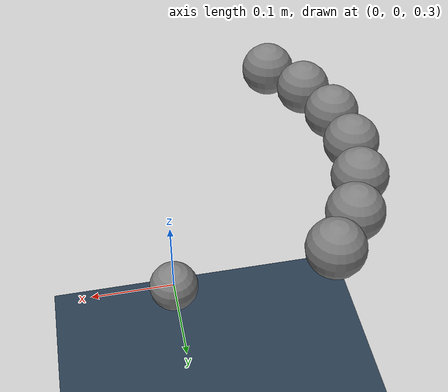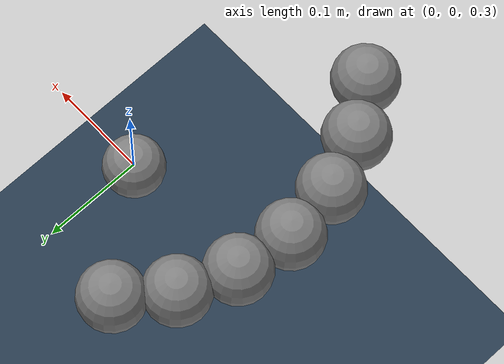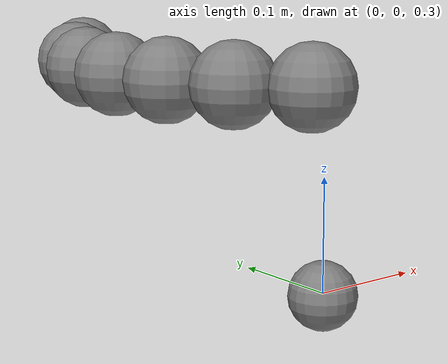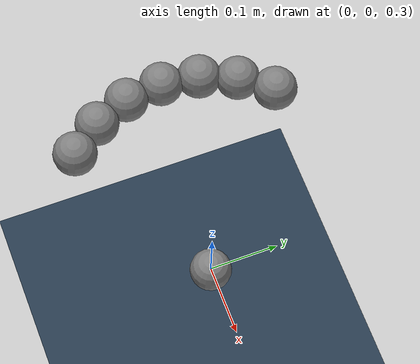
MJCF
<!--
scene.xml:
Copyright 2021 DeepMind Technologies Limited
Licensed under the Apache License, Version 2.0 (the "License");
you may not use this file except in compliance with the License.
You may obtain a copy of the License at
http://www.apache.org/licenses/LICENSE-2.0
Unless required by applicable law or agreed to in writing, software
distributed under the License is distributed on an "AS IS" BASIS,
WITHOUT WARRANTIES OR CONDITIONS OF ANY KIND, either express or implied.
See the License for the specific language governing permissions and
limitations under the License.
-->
<mujoco model="my_masses">
  <include file="scene.xml"/>
  <default>
    <default class="/"/>
  </default>
  <worldbody>

      <body><freejoint/><geom name="point_mass_0" class="/" type="sphere" size="0.03" mass="0.01" pos="-0.17399978637695312 0.10040092468261719 0.50000041723251343"/></body>
      <body><freejoint/><geom name="point_mass_1" class="/" type="sphere" size="0.03" mass="0.01" pos="0 -0 0.29800042510032654"/></body>
      <body><freejoint/><geom name="point_mass_2" class="/" type="sphere" size="0.03" mass="0.01" pos="-0.14200019836425781 0.14200019836425781 0.50000041723251343"/></body>
      <body><freejoint/><geom name="point_mass_3" class="/" type="sphere" size="0.03" mass="0.01" pos="-0.1939997673034668 0.052000045776367188 0.50000041723251343"/></body>
      <body><freejoint/><geom name="point_mass_4" class="/" type="sphere" size="0.03" mass="0.01" pos="-0.20079994201660156 -0 0.50000041723251343"/></body>
      <body><freejoint/><geom name="point_mass_5" class="/" type="sphere" size="0.03" mass="0.01" pos="-0.1939997673034668 -0.052000045776367188 0.50000041723251343"/></body>
      <body><freejoint/><geom name="point_mass_6" class="/" type="sphere" size="0.03" mass="0.01" pos="-0.17399978637695312 -0.10040092468261719 0.50000041723251343"/></body>
      <body><freejoint/><geom name="point_mass_7" class="/" type="sphere" size="0.03" mass="0.01" pos="-0.14200019836425781 -0.14200019836425781 0.50000041723251343"/></body>

  </worldbody>
</mujoco>

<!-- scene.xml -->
<mujoco>
  <compiler meshdir="asset" texturedir="asset"/>
  <statistic extent="1.5" meansize=".05"/>

  <option timestep="0.005" jacobian="sparse"/>

  <visual>
    <rgba haze="0.15 0.25 0.35 1"/>
    <quality shadowsize="4096"/>
    <map stiffness="700" shadowscale="0.5" fogstart="10" fogend="15" zfar="40" haze="0.3"/>
  </visual>

  <asset>
    <texture type="skybox" builtin="gradient" rgb1="0.3 0.5 0.7" rgb2="0 0 0" width="512" height="512"/>
    <texture name="texplane" type="2d" builtin="checker" rgb1=".2 .3 .4" rgb2=".1 0.15 0.2"
      width="512" height="512" mark="cross" markrgb=".8 .8 .8"/>

    <material name="matplane" reflectance="0.3" texture="texplane" texrepeat="1 1" texuniform="true"/>

  </asset>

  <worldbody>
    <light directional="true" diffuse=".4 .4 .4" specular="0.1 0.1 0.1" pos="0 0 5.0" dir="0 0 -1" castshadow="false"/>
    <light directional="true" diffuse=".6 .6 .6" specular="0.2 0.2 0.2" pos="0 0 4" dir="0 0 -1"/>

    <geom name="ground" type="plane" size="0 0 1" pos="0 0 0" quat="1 0 0 0" material="matplane" condim="1"/>

  </worldbody>
</mujoco>
